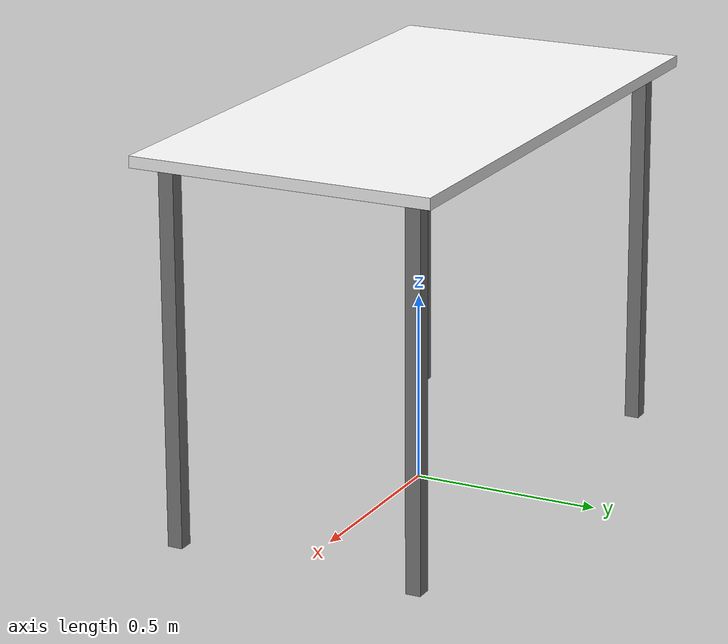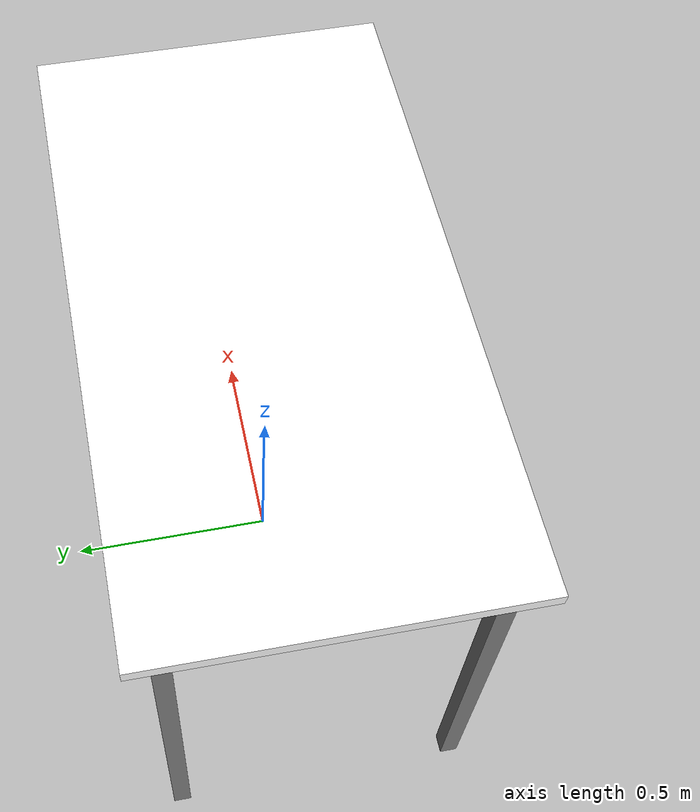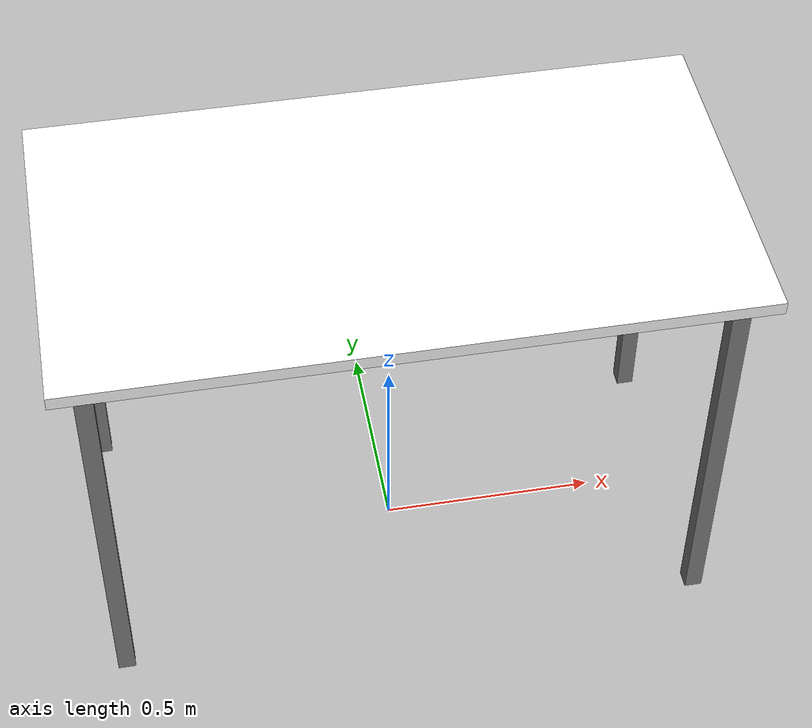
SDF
<?xml version="1.0"?>
<sdf version="1.5">
  <model name="table">
    <static>true</static>
    <link name="link">
      <collision name="top">
        <pose>0 0 1.0 0 0 0</pose>
        <geometry>
          <box>
            <size>1.5 0.7 0.03</size>
          </box>
        </geometry>
        <surface>
          <friction>
            <ode>
              <mu>0.9</mu>
              <mu2>0.9</mu2>
            </ode>
          </friction>
        </surface>
      </collision>
      <visual name="visual1">
        <pose>0 0 1.0 0 0 0</pose>
        <geometry>
          <box>
            <size>1.5 0.8 0.03</size>
          </box>
        </geometry>
        <material>
          <diffuse>1.0 1.0 1.0</diffuse>
          <pbr>
            <metal>
              <albedo_map>model://table/table_diffuse.jpg</albedo_map>
            </metal>
          </pbr>
        </material>
      </visual>
      <collision name="leg1">
        <pose>0.68 0.33 0.5 0 0 0</pose>
        <geometry>
          <box>
            <size>0.04 0.04 1.0</size>
          </box>
        </geometry>
      </collision>
      <visual name="leg1">
        <pose>0.68 0.33 0.5 0 0 0</pose>
        <geometry>
          <box>
            <size>0.04 0.04 1.0</size>
          </box>
        </geometry>
        <material>
          <diffuse>0.5 0.5 0.5</diffuse>
        </material>
      </visual>
      <collision name="leg2">
        <pose>0.68 -0.33 0.5 0 0 0</pose>
        <geometry>
          <box>
            <size>0.04 0.04 1.0</size>
          </box>
        </geometry>
      </collision>
      <visual name="leg2">
        <pose>0.68 -0.33 0.5 0 0 0</pose>
        <geometry>
          <box>
            <size>0.04 0.04 1.0</size>
          </box>
        </geometry>
        <material>
          <diffuse>0.5 0.5 0.5</diffuse>
        </material>
      </visual>
      <collision name="leg3">
        <pose>-0.68 -0.33 0.5 0 0 0</pose>
        <geometry>
          <box>
            <size>0.04 0.04 1.0</size>
          </box>
        </geometry>
      </collision>
      <visual name="leg3">
        <pose>-0.68 -0.33 0.5 0 0 0</pose>
        <geometry>
          <box>
            <size>0.04 0.04 1.0</size>
          </box>
        </geometry>
        <material>
          <diffuse>0.5 0.5 0.5</diffuse>
        </material>
      </visual>
      <collision name="leg4">
        <pose>-0.68 0.33 0.5 0 0 0</pose>
        <geometry>
          <box>
            <size>0.04 0.04 1.0</size>
          </box>
        </geometry>
      </collision>
      <visual name="leg4">
        <pose>-0.68 0.33 0.5 0 0 0</pose>
        <geometry>
          <box>
            <size>0.04 0.04 1.0</size>
          </box>
        </geometry>
        <material>
          <diffuse>0.5 0.5 0.5</diffuse>
        </material>
      </visual>
    </link>
  </model>
</sdf>
